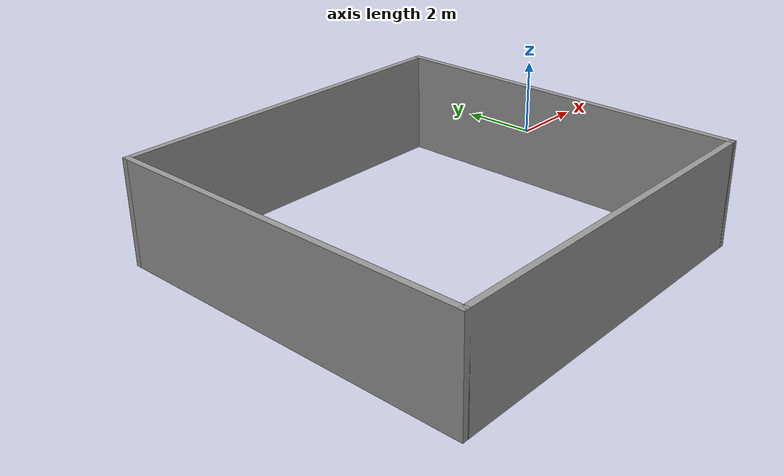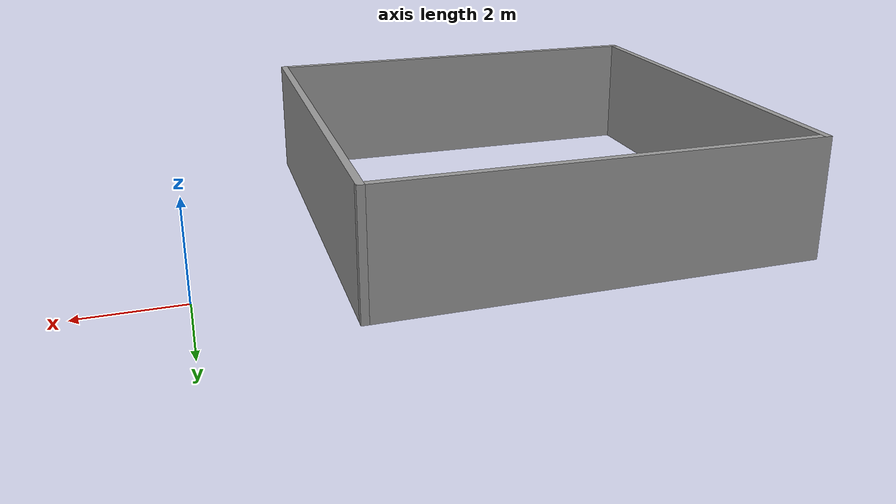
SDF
<?xml version='1.0'?>
<sdf version='1.6'>
  <model name='Confined_Area_10x10'>
    <pose frame=''>-7.17614 -2.83079 0 0 -0 0</pose>
    <link name='Wall_1'>
      <collision name='Wall_1_Collision'>
        <geometry>
          <box>
            <size>9 0.15 2.5</size>
          </box>
        </geometry>
        <pose frame=''>0 0 1.25 0 -0 0</pose>
      </collision>
      <visual name='Wall_1_Visual'>
        <pose frame=''>0 0 1.25 0 -0 0</pose>
        <geometry>
          <box>
            <size>9 0.15 2.5</size>
          </box>
        </geometry>
        <material>
          <script>
            <uri>file://media/materials/scripts/gazebo.material</uri>
            <name>Gazebo/Grey</name>
          </script>
          <ambient>1 1 1 1</ambient>
        </material>
        <meta>
          <layer>0</layer>
        </meta>
      </visual>
      <pose frame=''>4.425 0 0 0 -0 1.5708</pose>
    </link>
    <link name='Wall_2'>
      <collision name='Wall_2_Collision'>
        <geometry>
          <box>
            <size>9 0.15 2.5</size>
          </box>
        </geometry>
        <pose frame=''>0 0 1.25 0 -0 0</pose>
      </collision>
      <visual name='Wall_2_Visual'>
        <pose frame=''>0 0 1.25 0 -0 0</pose>
        <geometry>
          <box>
            <size>9 0.15 2.5</size>
          </box>
        </geometry>
        <material>
          <script>
            <uri>file://media/materials/scripts/gazebo.material</uri>
            <name>Gazebo/Grey</name>
          </script>
          <ambient>1 1 1 1</ambient>
        </material>
        <meta>
          <layer>0</layer>
        </meta>
      </visual>
      <pose frame=''>0 4.425 0 0 -0 3.14159</pose>
    </link>
    <link name='Wall_3'>
      <collision name='Wall_3_Collision'>
        <geometry>
          <box>
            <size>9 0.15 2.5</size>
          </box>
        </geometry>
        <pose frame=''>0 0 1.25 0 -0 0</pose>
      </collision>
      <visual name='Wall_3_Visual'>
        <pose frame=''>0 0 1.25 0 -0 0</pose>
        <geometry>
          <box>
            <size>9 0.15 2.5</size>
          </box>
        </geometry>
        <material>
          <script>
            <uri>file://media/materials/scripts/gazebo.material</uri>
            <name>Gazebo/Grey</name>
          </script>
          <ambient>1 1 1 1</ambient>
        </material>
        <meta>
          <layer>0</layer>
        </meta>
      </visual>
      <pose frame=''>-4.425 0 0 0 -0 -1.5708</pose>
    </link>
    <link name='Wall_4'>
      <collision name='Wall_4_Collision'>
        <geometry>
          <box>
            <size>9 0.15 2.5</size>
          </box>
        </geometry>
        <pose frame=''>0 0 1.25 0 -0 0</pose>
      </collision>
      <visual name='Wall_4_Visual'>
        <pose frame=''>0 0 1.25 0 -0 0</pose>
        <geometry>
          <box>
            <size>9 0.15 2.5</size>
          </box>
        </geometry>
        <material>
          <script>
            <uri>file://media/materials/scripts/gazebo.material</uri>
            <name>Gazebo/Grey</name>
          </script>
          <ambient>1 1 1 1</ambient>
        </material>
        <meta>
          <layer>0</layer>
        </meta>
      </visual>
      <pose frame=''>0 -4.425 0 0 -0 0</pose>
    </link>
    <static>1</static>
  </model>
</sdf>
